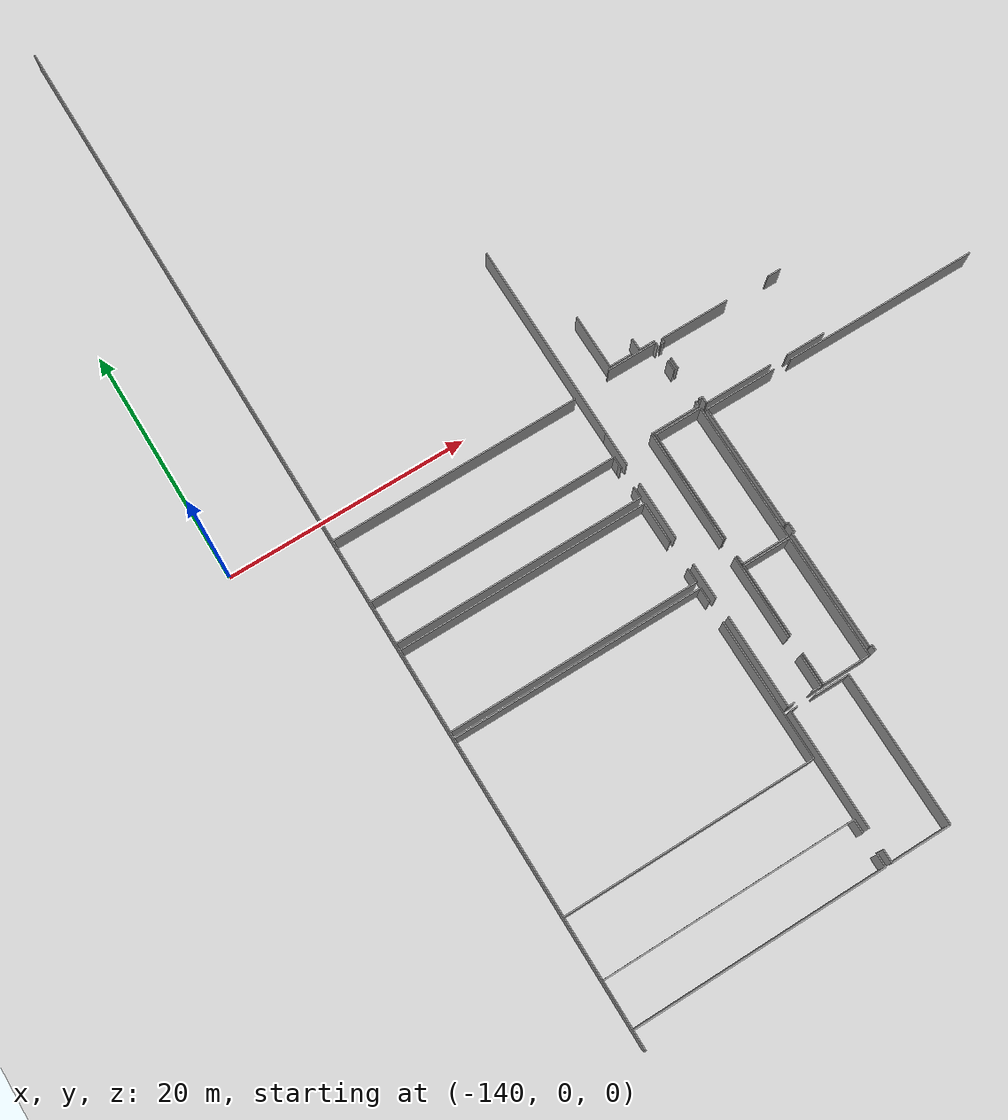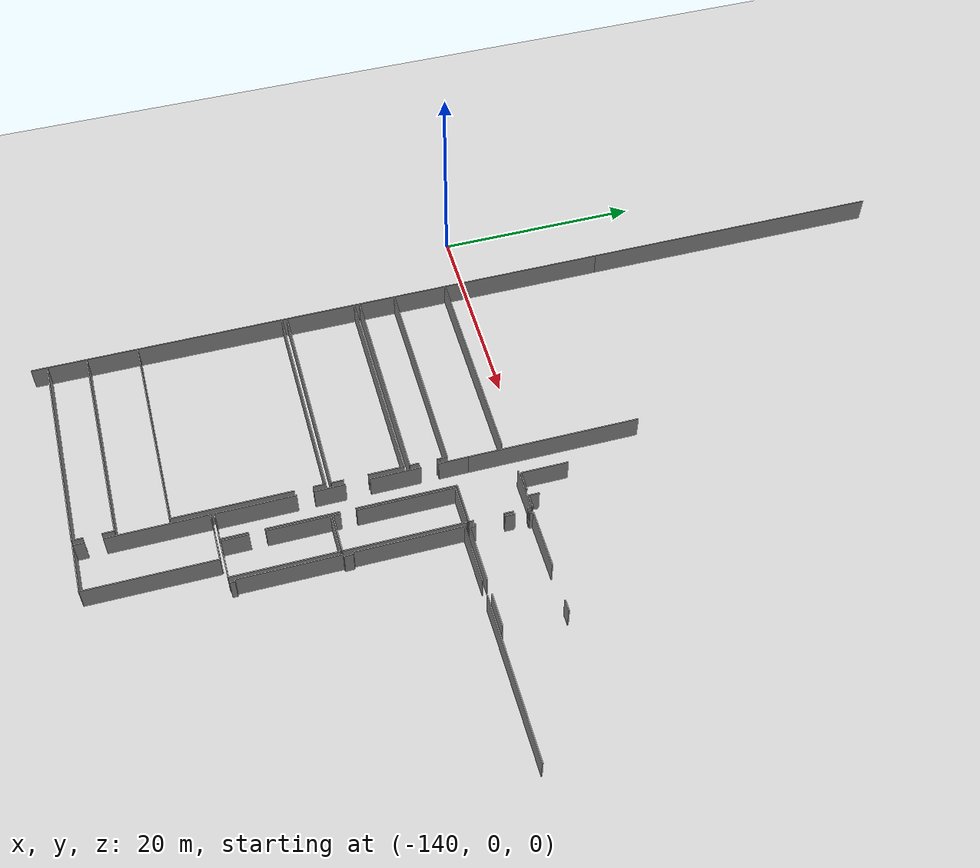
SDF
<sdf version="1.6">
 <world name="default">
  <model name="ground_plane">
   <static>1</static>
   <link name="link">
    <collision name="collision">
     <geometry><plane><normal>0 0 1</normal><size>100 100</size></plane></geometry>
     <surface><friction><ode><mu>100</mu><mu2>50</mu2></ode></friction></surface>
    </collision>
    <visual name="visual">
     <cast_shadows>0</cast_shadows>
     <geometry><plane><normal>0 0 1</normal><size>100 100</size></plane></geometry>
     <material>
      <script><uri>file://media/materials/scripts/gazebo.material</uri><name>Gazebo/Grey</name></script>
     </material>
    </visual>
   </link>
  </model>
  <model name="50015847">
   <static>1</static>
   <link name="Wall_31">
    <collision name="Wall_31_Collision">
     <geometry><box><size>16.1043880612 0.1 2.5</size></box></geometry>
     <pose>8.05219403061 0 1.25 0 0 0</pose>
    </collision>
    <visual name="Wall_31_Visual">
     <pose>8.05219403061 0 1.25 0 0 0</pose>
     <geometry><box><size>16.1043880612 0.1 2.5</size></box></geometry>
     <material>
      <script><uri>file://media/materials/scripts/gazebo.material</uri><name>Gazebo/Grey</name></script>
      <ambient>1 1 1 1</ambient>
     </material>
    </visual>
    <pose>0.00330502872833 -46.1496415315 0 0 0 1.57079632679</pose>
   </link>
   <link name="Wall_35">
    <collision name="Wall_35_Collision">
     <geometry><box><size>20.7571195687 0.1 2.5</size></box></geometry>
     <pose>10.3785597844 0 1.25 0 0 0</pose>
    </collision>
    <visual name="Wall_35_Visual">
     <pose>10.3785597844 0 1.25 0 0 0</pose>
     <geometry><box><size>20.7571195687 0.1 2.5</size></box></geometry>
     <material>
      <script><uri>file://media/materials/scripts/gazebo.material</uri><name>Gazebo/Grey</name></script>
      <ambient>1 1 1 1</ambient>
     </material>
    </visual>
    <pose>20.7604108405 -46.1735394315 0 0 0 3.14044134234</pose>
   </link>
   <link name="Wall_36">
    <collision name="Wall_36_Collision">
     <geometry><box><size>3.59027813088 0.1 2.5</size></box></geometry>
     <pose>1.79513906544 0 1.25 0 0 0</pose>
    </collision>
    <visual name="Wall_36_Visual">
     <pose>1.79513906544 0 1.25 0 0 0</pose>
     <geometry><box><size>3.59027813088 0.1 2.5</size></box></geometry>
     <material>
      <script><uri>file://media/materials/scripts/gazebo.material</uri><name>Gazebo/Grey</name></script>
      <ambient>1 1 1 1</ambient>
     </material>
    </visual>
    <pose>0.0101693191641 -55.0701683022 0 0 0 1.57079632679</pose>
   </link>
   <link name="Wall_37">
    <collision name="Wall_37_Collision">
     <geometry><box><size>20.7502415213 0.1 2.5</size></box></geometry>
     <pose>10.3751207607 0 1.25 0 0 0</pose>
    </collision>
    <visual name="Wall_37_Visual">
     <pose>10.3751207607 0 1.25 0 0 0</pose>
     <geometry><box><size>20.7502415213 0.1 2.5</size></box></geometry>
     <material>
      <script><uri>file://media/materials/scripts/gazebo.material</uri><name>Gazebo/Grey</name></script>
      <ambient>1 1 1 1</ambient>
     </material>
    </visual>
    <pose>0.0101693191641 -51.4798901714 0 0 0 0.0</pose>
   </link>
   <link name="Wall_38">
    <collision name="Wall_38_Collision">
     <geometry><box><size>0.692784868053 0.1 2.5</size></box></geometry>
     <pose>0.346392434027 0 1.25 0 0 0</pose>
    </collision>
    <visual name="Wall_38_Visual">
     <pose>0.346392434027 0 1.25 0 0 0</pose>
     <geometry><box><size>0.692784868053 0.1 2.5</size></box></geometry>
     <material>
      <script><uri>file://media/materials/scripts/gazebo.material</uri><name>Gazebo/Grey</name></script>
      <ambient>1 1 1 1</ambient>
     </material>
    </visual>
    <pose>20.7604108405 -51.4798901714 0 0 0 -1.57079632679</pose>
   </link>
   <link name="Wall_39">
    <collision name="Wall_39_Collision">
     <geometry><box><size>0.328469009 0.1 2.5</size></box></geometry>
     <pose>0.1642345045 0 1.25 0 0 0</pose>
    </collision>
    <visual name="Wall_39_Visual">
     <pose>0.1642345045 0 1.25 0 0 0</pose>
     <geometry><box><size>0.328469009 0.1 2.5</size></box></geometry>
     <material>
      <script><uri>file://media/materials/scripts/gazebo.material</uri><name>Gazebo/Grey</name></script>
      <ambient>1 1 1 1</ambient>
     </material>
    </visual>
    <pose>20.7604108405 -52.1726750394 0 0 0 -1.57079632679</pose>
   </link>
   <link name="Wall_40">
    <collision name="Wall_40_Collision">
     <geometry><box><size>0.925662276911 0.1 2.5</size></box></geometry>
     <pose>0.462831138455 0 1.25 0 0 0</pose>
    </collision>
    <visual name="Wall_40_Visual">
     <pose>0.462831138455 0 1.25 0 0 0</pose>
     <geometry><box><size>0.925662276911 0.1 2.5</size></box></geometry>
     <material>
      <script><uri>file://media/materials/scripts/gazebo.material</uri><name>Gazebo/Grey</name></script>
      <ambient>1 1 1 1</ambient>
     </material>
    </visual>
    <pose>20.7604108405 -54.1623023339 0 0 0 -1.57079632679</pose>
   </link>
   <link name="Wall_41">
    <collision name="Wall_41_Collision">
     <geometry><box><size>20.7502491528 0.1 2.5</size></box></geometry>
     <pose>10.3751245764 0 1.25 0 0 0</pose>
    </collision>
    <visual name="Wall_41_Visual">
     <pose>10.3751245764 0 1.25 0 0 0</pose>
     <geometry><box><size>20.7502491528 0.1 2.5</size></box></geometry>
     <material>
      <script><uri>file://media/materials/scripts/gazebo.material</uri><name>Gazebo/Grey</name></script>
      <ambient>1 1 1 1</ambient>
     </material>
    </visual>
    <pose>20.7604108405 -55.0879646108 0 0 0 3.14073501036</pose>
   </link>
   <link name="Wall_42">
    <collision name="Wall_42_Collision">
     <geometry><box><size>6.89327299537 0.1 2.5</size></box></geometry>
     <pose>3.44663649769 0 1.25 0 0 0</pose>
    </collision>
    <visual name="Wall_42_Visual">
     <pose>3.44663649769 0 1.25 0 0 0</pose>
     <geometry><box><size>6.89327299537 0.1 2.5</size></box></geometry>
     <material>
      <script><uri>file://media/materials/scripts/gazebo.material</uri><name>Gazebo/Grey</name></script>
      <ambient>1 1 1 1</ambient>
     </material>
    </visual>
    <pose>0.012457415976 -62.5209742208 0 0 0 1.57079632679</pose>
   </link>
   <link name="Wall_43">
    <collision name="Wall_43_Collision">
     <geometry><box><size>20.7428687649 0.1 2.5</size></box></geometry>
     <pose>10.3714343825 0 1.25 0 0 0</pose>
    </collision>
    <visual name="Wall_43_Visual">
     <pose>10.3714343825 0 1.25 0 0 0</pose>
     <geometry><box><size>20.7428687649 0.1 2.5</size></box></geometry>
     <material>
      <script><uri>file://media/materials/scripts/gazebo.material</uri><name>Gazebo/Grey</name></script>
      <ambient>1 1 1 1</ambient>
     </material>
    </visual>
    <pose>0.012457415976 -55.6277012254 0 0 0 0.0</pose>
   </link>
   <link name="Wall_44">
    <collision name="Wall_44_Collision">
     <geometry><box><size>3.4257893934 0.1 2.5</size></box></geometry>
     <pose>1.7128946967 0 1.25 0 0 0</pose>
    </collision>
    <visual name="Wall_44_Visual">
     <pose>1.7128946967 0 1.25 0 0 0</pose>
     <geometry><box><size>3.4257893934 0.1 2.5</size></box></geometry>
     <material>
      <script><uri>file://media/materials/scripts/gazebo.material</uri><name>Gazebo/Grey</name></script>
      <ambient>1 1 1 1</ambient>
     </material>
    </visual>
    <pose>20.7553261809 -55.6277012254 0 0 0 -1.57079632679</pose>
   </link>
   <link name="Wall_45">
    <collision name="Wall_45_Collision">
     <geometry><box><size>1.17023440281 0.1 2.5</size></box></geometry>
     <pose>0.585117201403 0 1.25 0 0 0</pose>
    </collision>
    <visual name="Wall_45_Visual">
     <pose>0.585117201403 0 1.25 0 0 0</pose>
     <geometry><box><size>1.17023440281 0.1 2.5</size></box></geometry>
     <material>
      <script><uri>file://media/materials/scripts/gazebo.material</uri><name>Gazebo/Grey</name></script>
      <ambient>1 1 1 1</ambient>
     </material>
    </visual>
    <pose>20.7553261809 -61.3606549042 0 0 0 -1.57079632679</pose>
   </link>
   <link name="Wall_46">
    <collision name="Wall_46_Collision">
     <geometry><box><size>20.7428711346 0.1 2.5</size></box></geometry>
     <pose>10.3714355673 0 1.25 0 0 0</pose>
    </collision>
    <visual name="Wall_46_Visual">
     <pose>10.3714355673 0 1.25 0 0 0</pose>
     <geometry><box><size>20.7428711346 0.1 2.5</size></box></geometry>
     <material>
      <script><uri>file://media/materials/scripts/gazebo.material</uri><name>Gazebo/Grey</name></script>
      <ambient>1 1 1 1</ambient>
     </material>
    </visual>
    <pose>20.7553261809 -62.530889307 0 0 0 3.14111465387</pose>
   </link>
   <link name="Wall_47">
    <collision name="Wall_47_Collision">
     <geometry><box><size>14.4322977577 0.1 2.5</size></box></geometry>
     <pose>7.21614887883 0 1.25 0 0 0</pose>
    </collision>
    <visual name="Wall_47_Visual">
     <pose>7.21614887883 0 1.25 0 0 0</pose>
     <geometry><box><size>14.4322977577 0.1 2.5</size></box></geometry>
     <material>
      <script><uri>file://media/materials/scripts/gazebo.material</uri><name>Gazebo/Grey</name></script>
      <ambient>1 1 1 1</ambient>
     </material>
    </visual>
    <pose>0.00406772766564 -77.4805511771 0 0 0 1.57079632679</pose>
   </link>
   <link name="Wall_48">
    <collision name="Wall_48_Collision">
     <geometry><box><size>20.7311740479 0.1 2.5</size></box></geometry>
     <pose>10.3655870239 0 1.25 0 0 0</pose>
    </collision>
    <visual name="Wall_48_Visual">
     <pose>10.3655870239 0 1.25 0 0 0</pose>
     <geometry><box><size>20.7311740479 0.1 2.5</size></box></geometry>
     <material>
      <script><uri>file://media/materials/scripts/gazebo.material</uri><name>Gazebo/Grey</name></script>
      <ambient>1 1 1 1</ambient>
     </material>
    </visual>
    <pose>0.00406772766564 -63.0482534194 0 0 0 0.0</pose>
   </link>
   <link name="Wall_49">
    <collision name="Wall_49_Collision">
     <geometry><box><size>1.20811511669 0.1 2.5</size></box></geometry>
     <pose>0.604057558346 0 1.25 0 0 0</pose>
    </collision>
    <visual name="Wall_49_Visual">
     <pose>0.604057558346 0 1.25 0 0 0</pose>
     <geometry><box><size>1.20811511669 0.1 2.5</size></box></geometry>
     <material>
      <script><uri>file://media/materials/scripts/gazebo.material</uri><name>Gazebo/Grey</name></script>
      <ambient>1 1 1 1</ambient>
     </material>
    </visual>
    <pose>20.7352417756 -63.0482534194 0 0 0 -1.57079632679</pose>
   </link>
   <link name="Wall_50">
    <collision name="Wall_50_Collision">
     <geometry><box><size>11.495906849 0.1 2.5</size></box></geometry>
     <pose>5.74795342452 0 1.25 0 0 0</pose>
    </collision>
    <visual name="Wall_50_Visual">
     <pose>5.74795342452 0 1.25 0 0 0</pose>
     <geometry><box><size>11.495906849 0.1 2.5</size></box></geometry>
     <material>
      <script><uri>file://media/materials/scripts/gazebo.material</uri><name>Gazebo/Grey</name></script>
      <ambient>1 1 1 1</ambient>
     </material>
    </visual>
    <pose>20.7352417756 -65.9950678802 0 0 0 -1.57079632679</pose>
   </link>
   <link name="Wall_51">
    <collision name="Wall_51_Collision">
     <geometry><box><size>20.7311766684 0.1 2.5</size></box></geometry>
     <pose>10.3655883342 0 1.25 0 0 0</pose>
    </collision>
    <visual name="Wall_51_Visual">
     <pose>10.3655883342 0 1.25 0 0 0</pose>
     <geometry><box><size>20.7311766684 0.1 2.5</size></box></geometry>
     <material>
      <script><uri>file://media/materials/scripts/gazebo.material</uri><name>Gazebo/Grey</name></script>
      <ambient>1 1 1 1</ambient>
     </material>
    </visual>
    <pose>20.7352417756 -77.4909747292 0 0 0 3.1410898576</pose>
   </link>
   <link name="Wall_52">
    <collision name="Wall_52_Collision">
     <geometry><box><size>2.62673514008 0.1 2.5</size></box></geometry>
     <pose>1.31336757004 0 1.25 0 0 0</pose>
    </collision>
    <visual name="Wall_52_Visual">
     <pose>1.31336757004 0 1.25 0 0 0</pose>
     <geometry><box><size>2.62673514008 0.1 2.5</size></box></geometry>
     <material>
      <script><uri>file://media/materials/scripts/gazebo.material</uri><name>Gazebo/Grey</name></script>
      <ambient>1 1 1 1</ambient>
     </material>
    </visual>
    <pose>24.3034016373 -73.4753648243 0 0 0 1.57079632679</pose>
   </link>
   <link name="Wall_53">
    <collision name="Wall_53_Collision">
     <geometry><box><size>6.01159302385 0.1 2.5</size></box></geometry>
     <pose>3.00579651192 0 1.25 0 0 0</pose>
    </collision>
    <visual name="Wall_53_Visual">
     <pose>3.00579651192 0 1.25 0 0 0</pose>
     <geometry><box><size>6.01159302385 0.1 2.5</size></box></geometry>
     <material>
      <script><uri>file://media/materials/scripts/gazebo.material</uri><name>Gazebo/Grey</name></script>
      <ambient>1 1 1 1</ambient>
     </material>
    </visual>
    <pose>24.3034016373 -69.3458585448 0 0 0 1.57079632679</pose>
   </link>
   <link name="Wall_54">
    <collision name="Wall_54_Collision">
     <geometry><box><size>3.95205166014 0.1 2.5</size></box></geometry>
     <pose>1.97602583007 0 1.25 0 0 0</pose>
    </collision>
    <visual name="Wall_54_Visual">
     <pose>1.97602583007 0 1.25 0 0 0</pose>
     <geometry><box><size>3.95205166014 0.1 2.5</size></box></geometry>
     <material>
      <script><uri>file://media/materials/scripts/gazebo.material</uri><name>Gazebo/Grey</name></script>
      <ambient>1 1 1 1</ambient>
     </material>
    </visual>
    <pose>24.3034016373 -63.3342655209 0 0 0 0.0</pose>
   </link>
   <link name="Wall_55">
    <collision name="Wall_55_Collision">
     <geometry><box><size>10.1238114608 0.1 2.5</size></box></geometry>
     <pose>5.06190573041 0 1.25 0 0 0</pose>
    </collision>
    <visual name="Wall_55_Visual">
     <pose>5.06190573041 0 1.25 0 0 0</pose>
     <geometry><box><size>10.1238114608 0.1 2.5</size></box></geometry>
     <material>
      <script><uri>file://media/materials/scripts/gazebo.material</uri><name>Gazebo/Grey</name></script>
      <ambient>1 1 1 1</ambient>
     </material>
    </visual>
    <pose>28.2554532974 -63.3342655209 0 0 0 -1.57079632679</pose>
   </link>
   <link name="Wall_56">
    <collision name="Wall_56_Collision">
     <geometry><box><size>3.9520894719 0.1 2.5</size></box></geometry>
     <pose>1.97604473595 0 1.25 0 0 0</pose>
    </collision>
    <visual name="Wall_56_Visual">
     <pose>1.97604473595 0 1.25 0 0 0</pose>
     <geometry><box><size>3.9520894719 0.1 2.5</size></box></geometry>
     <material>
      <script><uri>file://media/materials/scripts/gazebo.material</uri><name>Gazebo/Grey</name></script>
      <ambient>1 1 1 1</ambient>
     </material>
    </visual>
    <pose>28.2554532974 -73.4580769817 0 0 0 -3.13721828458</pose>
   </link>
   <link name="Wall_57">
    <collision name="Wall_57_Collision">
     <geometry><box><size>3.94747546652 0.1 2.5</size></box></geometry>
     <pose>1.97373773326 0 1.25 0 0 0</pose>
    </collision>
    <visual name="Wall_57_Visual">
     <pose>1.97373773326 0 1.25 0 0 0</pose>
     <geometry><box><size>3.94747546652 0.1 2.5</size></box></geometry>
     <material>
      <script><uri>file://media/materials/scripts/gazebo.material</uri><name>Gazebo/Grey</name></script>
      <ambient>1 1 1 1</ambient>
     </material>
    </visual>
    <pose>24.3079778309 -51.6453958407 0 0 0 0.0</pose>
   </link>
   <link name="Wall_58">
    <collision name="Wall_58_Collision">
     <geometry><box><size>11.5154827884 0.1 2.5</size></box></geometry>
     <pose>5.75774139421 0 1.25 0 0 0</pose>
    </collision>
    <visual name="Wall_58_Visual">
     <pose>5.75774139421 0 1.25 0 0 0</pose>
     <geometry><box><size>11.5154827884 0.1 2.5</size></box></geometry>
     <material>
      <script><uri>file://media/materials/scripts/gazebo.material</uri><name>Gazebo/Grey</name></script>
      <ambient>1 1 1 1</ambient>
     </material>
    </visual>
    <pose>28.2554532974 -51.6453958407 0 0 0 -1.57079632679</pose>
   </link>
   <link name="Wall_59">
    <collision name="Wall_59_Collision">
     <geometry><box><size>3.94188234098 0.1 2.5</size></box></geometry>
     <pose>1.97094117049 0 1.25 0 0 0</pose>
    </collision>
    <visual name="Wall_59_Visual">
     <pose>1.97094117049 0 1.25 0 0 0</pose>
     <geometry><box><size>3.94188234098 0.1 2.5</size></box></geometry>
     <material>
      <script><uri>file://media/materials/scripts/gazebo.material</uri><name>Gazebo/Grey</name></script>
      <ambient>1 1 1 1</ambient>
     </material>
    </visual>
    <pose>28.2554532974 -63.1608786292 0 0 0 3.14159265359</pose>
   </link>
   <link name="Wall_60">
    <collision name="Wall_60_Collision">
     <geometry><box><size>0.714648904256 0.1 2.5</size></box></geometry>
     <pose>0.357324452128 0 1.25 0 0 0</pose>
    </collision>
    <visual name="Wall_60_Visual">
     <pose>0.357324452128 0 1.25 0 0 0</pose>
     <geometry><box><size>0.714648904256 0.1 2.5</size></box></geometry>
     <material>
      <script><uri>file://media/materials/scripts/gazebo.material</uri><name>Gazebo/Grey</name></script>
      <ambient>1 1 1 1</ambient>
     </material>
    </visual>
    <pose>24.3135709564 -63.1608786292 0 0 0 1.57079632679</pose>
   </link>
   <link name="Wall_61">
    <collision name="Wall_61_Collision">
     <geometry><box><size>9.30899644306 0.1 2.5</size></box></geometry>
     <pose>4.65449822153 0 1.25 0 0 0</pose>
    </collision>
    <visual name="Wall_61_Visual">
     <pose>4.65449822153 0 1.25 0 0 0</pose>
     <geometry><box><size>9.30899644306 0.1 2.5</size></box></geometry>
     <material>
      <script><uri>file://media/materials/scripts/gazebo.material</uri><name>Gazebo/Grey</name></script>
      <ambient>1 1 1 1</ambient>
     </material>
    </visual>
    <pose>24.3135709564 -60.9543906035 0 0 0 1.57139715696</pose>
   </link>
   <link name="Wall_62">
    <collision name="Wall_62_Collision">
     <geometry><box><size>4.62576905476 0.1 2.5</size></box></geometry>
     <pose>2.31288452738 0 1.25 0 0 0</pose>
    </collision>
    <visual name="Wall_62_Visual">
     <pose>2.31288452738 0 1.25 0 0 0</pose>
     <geometry><box><size>4.62576905476 0.1 2.5</size></box></geometry>
     <material>
      <script><uri>file://media/materials/scripts/gazebo.material</uri><name>Gazebo/Grey</name></script>
      <ambient>1 1 1 1</ambient>
     </material>
    </visual>
    <pose>24.3176386841 -45.3851629633 0 0 0 1.57079632679</pose>
   </link>
   <link name="Wall_66">
    <collision name="Wall_66_Collision">
     <geometry><box><size>1.32277419027 0.1 2.5</size></box></geometry>
     <pose>0.661387095134 0 1.25 0 0 0</pose>
    </collision>
    <visual name="Wall_66_Visual">
     <pose>0.661387095134 0 1.25 0 0 0</pose>
     <geometry><box><size>1.32277419027 0.1 2.5</size></box></geometry>
     <material>
      <script><uri>file://media/materials/scripts/gazebo.material</uri><name>Gazebo/Grey</name></script>
      <ambient>1 1 1 1</ambient>
     </material>
    </visual>
    <pose>28.2457924442 -45.4171963187 0 0 0 3.14159265359</pose>
   </link>
   <link name="Wall_67">
    <collision name="Wall_67_Collision">
     <geometry><box><size>1.03066049728 0.1 2.5</size></box></geometry>
     <pose>0.51533024864 0 1.25 0 0 0</pose>
    </collision>
    <visual name="Wall_67_Visual">
     <pose>0.51533024864 0 1.25 0 0 0</pose>
     <geometry><box><size>1.03066049728 0.1 2.5</size></box></geometry>
     <material>
      <script><uri>file://media/materials/scripts/gazebo.material</uri><name>Gazebo/Grey</name></script>
      <ambient>1 1 1 1</ambient>
     </material>
    </visual>
    <pose>26.9230182539 -45.4171963187 0 0 0 1.57079632679</pose>
   </link>
   <link name="Wall_70">
    <collision name="Wall_70_Collision">
     <geometry><box><size>1.90726909355 0.1 2.5</size></box></geometry>
     <pose>0.953634546773 0 1.25 0 0 0</pose>
    </collision>
    <visual name="Wall_70_Visual">
     <pose>0.953634546773 0 1.25 0 0 0</pose>
     <geometry><box><size>1.90726909355 0.1 2.5</size></box></geometry>
     <material>
      <script><uri>file://media/materials/scripts/gazebo.material</uri><name>Gazebo/Grey</name></script>
      <ambient>1 1 1 1</ambient>
     </material>
    </visual>
    <pose>26.2248944933 -45.3922814868 0 0 0 3.13786033288</pose>
   </link>
   <link name="Wall_98">
    <collision name="Wall_98_Collision">
     <geometry><box><size>16.7829358824 0.1 2.5</size></box></geometry>
     <pose>8.39146794122 0 1.25 0 0 0</pose>
    </collision>
    <visual name="Wall_98_Visual">
     <pose>8.39146794122 0 1.25 0 0 0</pose>
     <geometry><box><size>16.7829358824 0.1 2.5</size></box></geometry>
     <material>
      <script><uri>file://media/materials/scripts/gazebo.material</uri><name>Gazebo/Grey</name></script>
      <ambient>1 1 1 1</ambient>
     </material>
    </visual>
    <pose>21.2645548381 -49.5917018356 0 0 0 1.57079632679</pose>
   </link>
   <link name="Wall_109">
    <collision name="Wall_109_Collision">
     <geometry><box><size>4.17475974983 0.1 2.5</size></box></geometry>
     <pose>2.08737987492 0 1.25 0 0 0</pose>
    </collision>
    <visual name="Wall_109_Visual">
     <pose>2.08737987492 0 1.25 0 0 0</pose>
     <geometry><box><size>4.17475974983 0.1 2.5</size></box></geometry>
     <material>
      <script><uri>file://media/materials/scripts/gazebo.material</uri><name>Gazebo/Grey</name></script>
      <ambient>1 1 1 1</ambient>
     </material>
    </visual>
    <pose>24.0710326944 -45.5666853104 0 0 0 0.0</pose>
   </link>
   <link name="Wall_110">
    <collision name="Wall_110_Collision">
     <geometry><box><size>0.353638073931 0.1 2.5</size></box></geometry>
     <pose>0.176819036965 0 1.25 0 0 0</pose>
    </collision>
    <visual name="Wall_110_Visual">
     <pose>0.176819036965 0 1.25 0 0 0</pose>
     <geometry><box><size>0.353638073931 0.1 2.5</size></box></geometry>
     <material>
      <script><uri>file://media/materials/scripts/gazebo.material</uri><name>Gazebo/Grey</name></script>
      <ambient>1 1 1 1</ambient>
     </material>
    </visual>
    <pose>28.2457924442 -45.5666853104 0 0 0 -1.57079632679</pose>
   </link>
   <link name="Wall_111">
    <collision name="Wall_111_Collision">
     <geometry><box><size>0.898205115168 0.1 2.5</size></box></geometry>
     <pose>0.449102557584 0 1.25 0 0 0</pose>
    </collision>
    <visual name="Wall_111_Visual">
     <pose>0.449102557584 0 1.25 0 0 0</pose>
     <geometry><box><size>0.898205115168 0.1 2.5</size></box></geometry>
     <material>
      <script><uri>file://media/materials/scripts/gazebo.material</uri><name>Gazebo/Grey</name></script>
      <ambient>1 1 1 1</ambient>
     </material>
    </visual>
    <pose>28.2457924442 -47.2489449331 0 0 0 -1.57079632679</pose>
   </link>
   <link name="Wall_112">
    <collision name="Wall_112_Collision">
     <geometry><box><size>0.411857426145 0.1 2.5</size></box></geometry>
     <pose>0.205928713073 0 1.25 0 0 0</pose>
    </collision>
    <visual name="Wall_112_Visual">
     <pose>0.205928713073 0 1.25 0 0 0</pose>
     <geometry><box><size>0.411857426145 0.1 2.5</size></box></geometry>
     <material>
      <script><uri>file://media/materials/scripts/gazebo.material</uri><name>Gazebo/Grey</name></script>
      <ambient>1 1 1 1</ambient>
     </material>
    </visual>
    <pose>28.2457924442 -51.022016576 0 0 0 -1.57079632679</pose>
   </link>
   <link name="Wall_113">
    <collision name="Wall_113_Collision">
     <geometry><box><size>4.13687903595 0.1 2.5</size></box></geometry>
     <pose>2.06843951797 0 1.25 0 0 0</pose>
    </collision>
    <visual name="Wall_113_Visual">
     <pose>2.06843951797 0 1.25 0 0 0</pose>
     <geometry><box><size>4.13687903595 0.1 2.5</size></box></geometry>
     <material>
      <script><uri>file://media/materials/scripts/gazebo.material</uri><name>Gazebo/Grey</name></script>
      <ambient>1 1 1 1</ambient>
     </material>
    </visual>
    <pose>28.2457924442 -51.4338740021 0 0 0 3.14159265359</pose>
   </link>
   <link name="Wall_114">
    <collision name="Wall_114_Collision">
     <geometry><box><size>9.55254995678 0.1 2.5</size></box></geometry>
     <pose>4.77627497839 0 1.25 0 0 0</pose>
    </collision>
    <visual name="Wall_114_Visual">
     <pose>4.77627497839 0 1.25 0 0 0</pose>
     <geometry><box><size>9.55254995678 0.1 2.5</size></box></geometry>
     <material>
      <script><uri>file://media/materials/scripts/gazebo.material</uri><name>Gazebo/Grey</name></script>
      <ambient>1 1 1 1</ambient>
     </material>
    </visual>
    <pose>24.1089134082 -51.4338740021 0 0 0 -1.57079632679</pose>
   </link>
   <link name="Wall_115">
    <collision name="Wall_115_Collision">
     <geometry><box><size>6.92505211776 0.1 2.5</size></box></geometry>
     <pose>3.46252605888 0 1.25 0 0 0</pose>
    </collision>
    <visual name="Wall_115_Visual">
     <pose>3.46252605888 0 1.25 0 0 0</pose>
     <geometry><box><size>6.92505211776 0.1 2.5</size></box></geometry>
     <material>
      <script><uri>file://media/materials/scripts/gazebo.material</uri><name>Gazebo/Grey</name></script>
      <ambient>1 1 1 1</ambient>
     </material>
    </visual>
    <pose>24.1089134082 -62.4525855494 0 0 0 -1.57079632679</pose>
   </link>
   <link name="Wall_116">
    <collision name="Wall_116_Collision">
     <geometry><box><size>2.6229216454 0.1 2.5</size></box></geometry>
     <pose>1.3114608227 0 1.25 0 0 0</pose>
    </collision>
    <visual name="Wall_116_Visual">
     <pose>1.3114608227 0 1.25 0 0 0</pose>
     <geometry><box><size>2.6229216454 0.1 2.5</size></box></geometry>
     <material>
      <script><uri>file://media/materials/scripts/gazebo.material</uri><name>Gazebo/Grey</name></script>
      <ambient>1 1 1 1</ambient>
     </material>
    </visual>
    <pose>24.1089134082 -70.8745614481 0 0 0 -1.57079632679</pose>
   </link>
   <link name="Wall_117">
    <collision name="Wall_117_Collision">
     <geometry><box><size>0.773122489449 0.1 2.5</size></box></geometry>
     <pose>0.386561244725 0 1.25 0 0 0</pose>
    </collision>
    <visual name="Wall_117_Visual">
     <pose>0.386561244725 0 1.25 0 0 0</pose>
     <geometry><box><size>0.773122489449 0.1 2.5</size></box></geometry>
     <material>
      <script><uri>file://media/materials/scripts/gazebo.material</uri><name>Gazebo/Grey</name></script>
      <ambient>1 1 1 1</ambient>
     </material>
    </visual>
    <pose>24.1089134082 -73.4974830935 0 0 0 3.14159265359</pose>
   </link>
   <link name="Wall_118">
    <collision name="Wall_118_Collision">
     <geometry><box><size>0.558041389129 0.1 2.5</size></box></geometry>
     <pose>0.279020694565 0 1.25 0 0 0</pose>
    </collision>
    <visual name="Wall_118_Visual">
     <pose>0.279020694565 0 1.25 0 0 0</pose>
     <geometry><box><size>0.558041389129 0.1 2.5</size></box></geometry>
     <material>
      <script><uri>file://media/materials/scripts/gazebo.material</uri><name>Gazebo/Grey</name></script>
      <ambient>1 1 1 1</ambient>
     </material>
    </visual>
    <pose>21.8286978187 -73.4974830935 0 0 0 3.14159265359</pose>
   </link>
   <link name="Wall_119">
    <collision name="Wall_119_Collision">
     <geometry><box><size>7.63588752733 0.1 2.5</size></box></geometry>
     <pose>3.81794376367 0 1.25 0 0 0</pose>
    </collision>
    <visual name="Wall_119_Visual">
     <pose>3.81794376367 0 1.25 0 0 0</pose>
     <geometry><box><size>7.63588752733 0.1 2.5</size></box></geometry>
     <material>
      <script><uri>file://media/materials/scripts/gazebo.material</uri><name>Gazebo/Grey</name></script>
      <ambient>1 1 1 1</ambient>
     </material>
    </visual>
    <pose>21.2706564296 -73.4974830935 0 0 0 1.57079632679</pose>
   </link>
   <link name="Wall_120">
    <collision name="Wall_120_Collision">
     <geometry><box><size>2.96613616718 0.1 2.5</size></box></geometry>
     <pose>1.48306808359 0 1.25 0 0 0</pose>
    </collision>
    <visual name="Wall_120_Visual">
     <pose>1.48306808359 0 1.25 0 0 0</pose>
     <geometry><box><size>2.96613616718 0.1 2.5</size></box></geometry>
     <material>
      <script><uri>file://media/materials/scripts/gazebo.material</uri><name>Gazebo/Grey</name></script>
      <ambient>1 1 1 1</ambient>
     </material>
    </visual>
    <pose>21.2706564296 -64.2688259521 0 0 0 1.57079632679</pose>
   </link>
   <link name="Wall_121">
    <collision name="Wall_121_Collision">
     <geometry><box><size>4.86551075406 0.1 2.5</size></box></geometry>
     <pose>2.43275537703 0 1.25 0 0 0</pose>
    </collision>
    <visual name="Wall_121_Visual">
     <pose>2.43275537703 0 1.25 0 0 0</pose>
     <geometry><box><size>4.86551075406 0.1 2.5</size></box></geometry>
     <material>
      <script><uri>file://media/materials/scripts/gazebo.material</uri><name>Gazebo/Grey</name></script>
      <ambient>1 1 1 1</ambient>
     </material>
    </visual>
    <pose>21.2706564296 -58.9973051304 0 0 0 1.57079632679</pose>
   </link>
   <link name="Wall_122">
    <collision name="Wall_122_Collision">
     <geometry><box><size>2.86470370648 0.1 2.5</size></box></geometry>
     <pose>1.43235185324 0 1.25 0 0 0</pose>
    </collision>
    <visual name="Wall_122_Visual">
     <pose>1.43235185324 0 1.25 0 0 0</pose>
     <geometry><box><size>2.86470370648 0.1 2.5</size></box></geometry>
     <material>
      <script><uri>file://media/materials/scripts/gazebo.material</uri><name>Gazebo/Grey</name></script>
      <ambient>1 1 1 1</ambient>
     </material>
    </visual>
    <pose>21.2706564296 -52.4563990441 0 0 0 1.57292624903</pose>
   </link>
   <link name="Wall_140">
    <collision name="Wall_140_Collision">
     <geometry><box><size>0.473890273046 0.1 2.5</size></box></geometry>
     <pose>0.236945136523 0 1.25 0 0 0</pose>
    </collision>
    <visual name="Wall_140_Visual">
     <pose>0.236945136523 0 1.25 0 0 0</pose>
     <geometry><box><size>0.473890273046 0.1 2.5</size></box></geometry>
     <material>
      <script><uri>file://media/materials/scripts/gazebo.material</uri><name>Gazebo/Grey</name></script>
      <ambient>1 1 1 1</ambient>
     </material>
    </visual>
    <pose>28.8429857121 -73.4250266945 0 0 0 1.57079632679</pose>
   </link>
   <link name="Wall_141">
    <collision name="Wall_141_Collision">
     <geometry><box><size>0.216098032237 0.1 2.5</size></box></geometry>
     <pose>0.108049016118 0 1.25 0 0 0</pose>
    </collision>
    <visual name="Wall_141_Visual">
     <pose>0.108049016118 0 1.25 0 0 0</pose>
     <geometry><box><size>0.216098032237 0.1 2.5</size></box></geometry>
     <material>
      <script><uri>file://media/materials/scripts/gazebo.material</uri><name>Gazebo/Grey</name></script>
      <ambient>1 1 1 1</ambient>
     </material>
    </visual>
    <pose>28.8429857121 -72.9511364214 0 0 0 3.14159265359</pose>
   </link>
   <link name="Wall_142">
    <collision name="Wall_142_Collision">
     <geometry><box><size>9.80246097524 0.1 2.5</size></box></geometry>
     <pose>4.90123048762 0 1.25 0 0 0</pose>
    </collision>
    <visual name="Wall_142_Visual">
     <pose>4.90123048762 0 1.25 0 0 0</pose>
     <geometry><box><size>9.80246097524 0.1 2.5</size></box></geometry>
     <material>
      <script><uri>file://media/materials/scripts/gazebo.material</uri><name>Gazebo/Grey</name></script>
      <ambient>1 1 1 1</ambient>
     </material>
    </visual>
    <pose>28.6268876799 -72.9511364214 0 0 0 1.57079632679</pose>
   </link>
   <link name="Wall_143">
    <collision name="Wall_143_Collision">
     <geometry><box><size>0.222962322673 0.1 2.5</size></box></geometry>
     <pose>0.111481161336 0 1.25 0 0 0</pose>
    </collision>
    <visual name="Wall_143_Visual">
     <pose>0.111481161336 0 1.25 0 0 0</pose>
     <geometry><box><size>0.222962322673 0.1 2.5</size></box></geometry>
     <material>
      <script><uri>file://media/materials/scripts/gazebo.material</uri><name>Gazebo/Grey</name></script>
      <ambient>1 1 1 1</ambient>
     </material>
    </visual>
    <pose>28.6268876799 -63.1486754462 0 0 0 0.0</pose>
   </link>
   <link name="Wall_144">
    <collision name="Wall_144_Collision">
     <geometry><box><size>0.852697411908 0.1 2.5</size></box></geometry>
     <pose>0.426348705954 0 1.25 0 0 0</pose>
    </collision>
    <visual name="Wall_144_Visual">
     <pose>0.426348705954 0 1.25 0 0 0</pose>
     <geometry><box><size>0.852697411908 0.1 2.5</size></box></geometry>
     <material>
      <script><uri>file://media/materials/scripts/gazebo.material</uri><name>Gazebo/Grey</name></script>
      <ambient>1 1 1 1</ambient>
     </material>
    </visual>
    <pose>28.8498500025 -63.1486754462 0 0 0 1.57079632679</pose>
   </link>
   <link name="Wall_145">
    <collision name="Wall_145_Collision">
     <geometry><box><size>0.223979254589 0.1 2.5</size></box></geometry>
     <pose>0.111989627294 0 1.25 0 0 0</pose>
    </collision>
    <visual name="Wall_145_Visual">
     <pose>0.111989627294 0 1.25 0 0 0</pose>
     <geometry><box><size>0.223979254589 0.1 2.5</size></box></geometry>
     <material>
      <script><uri>file://media/materials/scripts/gazebo.material</uri><name>Gazebo/Grey</name></script>
      <ambient>1 1 1 1</ambient>
     </material>
    </visual>
    <pose>28.8498500025 -62.2959780343 0 0 0 3.14159265359</pose>
   </link>
   <link name="Wall_146">
    <collision name="Wall_146_Collision">
     <geometry><box><size>10.3381298622 0.1 2.5</size></box></geometry>
     <pose>5.1690649311 0 1.25 0 0 0</pose>
    </collision>
    <visual name="Wall_146_Visual">
     <pose>5.1690649311 0 1.25 0 0 0</pose>
     <geometry><box><size>10.3381298622 0.1 2.5</size></box></geometry>
     <material>
      <script><uri>file://media/materials/scripts/gazebo.material</uri><name>Gazebo/Grey</name></script>
      <ambient>1 1 1 1</ambient>
     </material>
    </visual>
    <pose>28.625870748 -62.2959780343 0 0 0 1.57079632679</pose>
   </link>
   <link name="Wall_147">
    <collision name="Wall_147_Collision">
     <geometry><box><size>5.97650887273 0.1 2.5</size></box></geometry>
     <pose>2.98825443637 0 1.25 0 0 0</pose>
    </collision>
    <visual name="Wall_147_Visual">
     <pose>2.98825443637 0 1.25 0 0 0</pose>
     <geometry><box><size>5.97650887273 0.1 2.5</size></box></geometry>
     <material>
      <script><uri>file://media/materials/scripts/gazebo.material</uri><name>Gazebo/Grey</name></script>
      <ambient>1 1 1 1</ambient>
     </material>
    </visual>
    <pose>28.625870748 -51.9578481721 0 0 0 0.0</pose>
   </link>
   <link name="Wall_148">
    <collision name="Wall_148_Collision">
     <geometry><box><size>16.3329435094 0.1 2.5</size></box></geometry>
     <pose>8.16647175472 0 1.25 0 0 0</pose>
    </collision>
    <visual name="Wall_148_Visual">
     <pose>8.16647175472 0 1.25 0 0 0</pose>
     <geometry><box><size>16.3329435094 0.1 2.5</size></box></geometry>
     <material>
      <script><uri>file://media/materials/scripts/gazebo.material</uri><name>Gazebo/Grey</name></script>
      <ambient>1 1 1 1</ambient>
     </material>
    </visual>
    <pose>36.0837951899 -51.9578481721 0 0 0 0.0</pose>
   </link>
   <link name="Wall_1088">
    <collision name="Wall_1088_Collision">
     <geometry><box><size>5.80947780546 0.1 2.5</size></box></geometry>
     <pose>2.90473890273 0 1.25 0 0 0</pose>
    </collision>
    <visual name="Wall_1088_Visual">
     <pose>2.90473890273 0 1.25 0 0 0</pose>
     <geometry><box><size>5.80947780546 0.1 2.5</size></box></geometry>
     <material>
      <script><uri>file://media/materials/scripts/gazebo.material</uri><name>Gazebo/Grey</name></script>
      <ambient>1 1 1 1</ambient>
     </material>
    </visual>
    <pose>28.8262063355 -45.5501601668 0 0 0 0.0</pose>
   </link>
   <link name="Wall_1089">
    <collision name="Wall_1089_Collision">
     <geometry><box><size>1.1338790868 0.1 2.5</size></box></geometry>
     <pose>0.566939543398 0 1.25 0 0 0</pose>
    </collision>
    <visual name="Wall_1089_Visual">
     <pose>0.566939543398 0 1.25 0 0 0</pose>
     <geometry><box><size>1.1338790868 0.1 2.5</size></box></geometry>
     <material>
      <script><uri>file://media/materials/scripts/gazebo.material</uri><name>Gazebo/Grey</name></script>
      <ambient>1 1 1 1</ambient>
     </material>
    </visual>
    <pose>38.3411298114 -45.5501601668 0 0 0 0.0</pose>
   </link>
   <link name="Wall_1280">
    <collision name="Wall_1280_Collision">
     <geometry><box><size>3.33553668582 0.1 2.5</size></box></geometry>
     <pose>1.66776834291 0 1.25 0 0 0</pose>
    </collision>
    <visual name="Wall_1280_Visual">
     <pose>1.66776834291 0 1.25 0 0 0</pose>
     <geometry><box><size>3.33553668582 0.1 2.5</size></box></geometry>
     <material>
      <script><uri>file://media/materials/scripts/gazebo.material</uri><name>Gazebo/Grey</name></script>
      <ambient>1 1 1 1</ambient>
     </material>
    </visual>
    <pose>39.3707733767 -51.5401433874 0 0 0 3.14159265359</pose>
   </link>
   <link name="Wall_1281">
    <collision name="Wall_1281_Collision">
     <geometry><box><size>5.71541160319 0.1 2.5</size></box></geometry>
     <pose>2.8577058016 0 1.25 0 0 0</pose>
    </collision>
    <visual name="Wall_1281_Visual">
     <pose>2.8577058016 0 1.25 0 0 0</pose>
     <geometry><box><size>5.71541160319 0.1 2.5</size></box></geometry>
     <material>
      <script><uri>file://media/materials/scripts/gazebo.material</uri><name>Gazebo/Grey</name></script>
      <ambient>1 1 1 1</ambient>
     </material>
    </visual>
    <pose>34.5632277419 -51.5401433874 0 0 0 3.14159265359</pose>
   </link>
   <link name="Wall_1282">
    <collision name="Wall_1282_Collision">
     <geometry><box><size>0.563888747648 0.1 2.5</size></box></geometry>
     <pose>0.281944373824 0 1.25 0 0 0</pose>
    </collision>
    <visual name="Wall_1282_Visual">
     <pose>0.281944373824 0 1.25 0 0 0</pose>
     <geometry><box><size>0.563888747648 0.1 2.5</size></box></geometry>
     <material>
      <script><uri>file://media/materials/scripts/gazebo.material</uri><name>Gazebo/Grey</name></script>
      <ambient>1 1 1 1</ambient>
     </material>
    </visual>
    <pose>28.8478161387 -51.5401433874 0 0 0 1.57079632679</pose>
   </link>
   <link name="Wall_1283">
    <collision name="Wall_1283_Collision">
     <geometry><box><size>0.301520313215 0.1 2.5</size></box></geometry>
     <pose>0.150760156608 0 1.25 0 0 0</pose>
    </collision>
    <visual name="Wall_1283_Visual">
     <pose>0.150760156608 0 1.25 0 0 0</pose>
     <geometry><box><size>0.301520313215 0.1 2.5</size></box></geometry>
     <material>
      <script><uri>file://media/materials/scripts/gazebo.material</uri><name>Gazebo/Grey</name></script>
      <ambient>1 1 1 1</ambient>
     </material>
    </visual>
    <pose>28.8478161387 -50.9762546398 0 0 0 3.14159265359</pose>
   </link>
   <link name="Wall_1284">
    <collision name="Wall_1284_Collision">
     <geometry><box><size>0.975746173794 0.1 2.5</size></box></geometry>
     <pose>0.487873086897 0 1.25 0 0 0</pose>
    </collision>
    <visual name="Wall_1284_Visual">
     <pose>0.487873086897 0 1.25 0 0 0</pose>
     <geometry><box><size>0.975746173794 0.1 2.5</size></box></geometry>
     <material>
      <script><uri>file://media/materials/scripts/gazebo.material</uri><name>Gazebo/Grey</name></script>
      <ambient>1 1 1 1</ambient>
     </material>
    </visual>
    <pose>28.5462958255 -48.1529974068 0 0 0 1.57079632679</pose>
   </link>
   <link name="Wall_1285">
    <collision name="Wall_1285_Collision">
     <geometry><box><size>0.252961814207 0.1 2.5</size></box></geometry>
     <pose>0.126480907103 0 1.25 0 0 0</pose>
    </collision>
    <visual name="Wall_1285_Visual">
     <pose>0.126480907103 0 1.25 0 0 0</pose>
     <geometry><box><size>0.252961814207 0.1 2.5</size></box></geometry>
     <material>
      <script><uri>file://media/materials/scripts/gazebo.material</uri><name>Gazebo/Grey</name></script>
      <ambient>1 1 1 1</ambient>
     </material>
    </visual>
    <pose>28.5462958255 -45.876341079 0 0 0 0.0</pose>
   </link>
   <link name="Wall_1286">
    <collision name="Wall_1286_Collision">
     <geometry><box><size>0.327292254232 0.1 2.5</size></box></geometry>
     <pose>0.163646127116 0 1.25 0 0 0</pose>
    </collision>
    <visual name="Wall_1286_Visual">
     <pose>0.163646127116 0 1.25 0 0 0</pose>
     <geometry><box><size>0.327292254232 0.1 2.5</size></box></geometry>
     <material>
      <script><uri>file://media/materials/scripts/gazebo.material</uri><name>Gazebo/Grey</name></script>
      <ambient>1 1 1 1</ambient>
     </material>
    </visual>
    <pose>28.7992576397 -45.876341079 0 0 0 1.48836468065</pose>
   </link>
   <link name="Wall_1287">
    <collision name="Wall_1287_Collision">
     <geometry><box><size>0.573549600854 0.1 2.5</size></box></geometry>
     <pose>0.286774800427 0 1.25 0 0 0</pose>
    </collision>
    <visual name="Wall_1287_Visual">
     <pose>0.286774800427 0 1.25 0 0 0</pose>
     <geometry><box><size>0.573549600854 0.1 2.5</size></box></geometry>
     <material>
      <script><uri>file://media/materials/scripts/gazebo.material</uri><name>Gazebo/Grey</name></script>
      <ambient>1 1 1 1</ambient>
     </material>
    </visual>
    <pose>21.2495550923 -73.8284944323 0 0 0 0.0</pose>
   </link>
   <link name="Wall_1288">
    <collision name="Wall_1288_Collision">
     <geometry><box><size>2.87206996492 0.1 2.5</size></box></geometry>
     <pose>1.43603498246 0 1.25 0 0 0</pose>
    </collision>
    <visual name="Wall_1288_Visual">
     <pose>1.43603498246 0 1.25 0 0 0</pose>
     <geometry><box><size>2.87206996492 0.1 2.5</size></box></geometry>
     <material>
      <script><uri>file://media/materials/scripts/gazebo.material</uri><name>Gazebo/Grey</name></script>
      <ambient>1 1 1 1</ambient>
     </material>
    </visual>
    <pose>23.3418925103 -73.8284944323 0 0 0 0.0</pose>
   </link>
   <link name="Wall_1289">
    <collision name="Wall_1289_Collision">
     <geometry><box><size>12.4630091015 0.1 2.5</size></box></geometry>
     <pose>6.23150455077 0 1.25 0 0 0</pose>
    </collision>
    <visual name="Wall_1289_Visual">
     <pose>6.23150455077 0 1.25 0 0 0</pose>
     <geometry><box><size>12.4630091015 0.1 2.5</size></box></geometry>
     <material>
      <script><uri>file://media/materials/scripts/gazebo.material</uri><name>Gazebo/Grey</name></script>
      <ambient>1 1 1 1</ambient>
     </material>
    </visual>
    <pose>26.2139624752 -73.8284944323 0 0 0 -1.57079632679</pose>
   </link>
   <link name="Wall_1290">
    <collision name="Wall_1290_Collision">
     <geometry><box><size>4.95067880205 0.1 2.5</size></box></geometry>
     <pose>2.47533940103 0 1.25 0 0 0</pose>
    </collision>
    <visual name="Wall_1290_Visual">
     <pose>2.47533940103 0 1.25 0 0 0</pose>
     <geometry><box><size>4.95067880205 0.1 2.5</size></box></geometry>
     <material>
      <script><uri>file://media/materials/scripts/gazebo.material</uri><name>Gazebo/Grey</name></script>
      <ambient>1 1 1 1</ambient>
     </material>
    </visual>
    <pose>26.2139624752 -86.2915035338 0 0 0 3.14159265359</pose>
   </link>
   <link name="Wall_1291">
    <collision name="Wall_1291_Collision">
     <geometry><box><size>1.08176132608 0.1 2.5</size></box></geometry>
     <pose>0.54088066304 0 1.25 0 0 0</pose>
    </collision>
    <visual name="Wall_1291_Visual">
     <pose>0.54088066304 0 1.25 0 0 0</pose>
     <geometry><box><size>1.08176132608 0.1 2.5</size></box></geometry>
     <material>
      <script><uri>file://media/materials/scripts/gazebo.material</uri><name>Gazebo/Grey</name></script>
      <ambient>1 1 1 1</ambient>
     </material>
    </visual>
    <pose>21.2632836732 -86.2915035338 0 0 0 1.57079632679</pose>
   </link>
   <link name="Wall_1292">
    <collision name="Wall_1292_Collision">
     <geometry><box><size>9.71577722874 0.1 2.5</size></box></geometry>
     <pose>4.85788861437 0 1.25 0 0 0</pose>
    </collision>
    <visual name="Wall_1292_Visual">
     <pose>4.85788861437 0 1.25 0 0 0</pose>
     <geometry><box><size>9.71577722874 0.1 2.5</size></box></geometry>
     <material>
      <script><uri>file://media/materials/scripts/gazebo.material</uri><name>Gazebo/Grey</name></script>
      <ambient>1 1 1 1</ambient>
     </material>
    </visual>
    <pose>21.2632836732 -83.5442619617 0 0 0 1.57220934658</pose>
   </link>
   <link name="Wall_1293">
    <collision name="Wall_1293_Collision">
     <geometry><box><size>3.81730818122 0.1 2.5</size></box></geometry>
     <pose>1.90865409061 0 1.25 0 0 0</pose>
    </collision>
    <visual name="Wall_1293_Visual">
     <pose>1.90865409061 0 1.25 0 0 0</pose>
     <geometry><box><size>3.81730818122 0.1 2.5</size></box></geometry>
     <material>
      <script><uri>file://media/materials/scripts/gazebo.material</uri><name>Gazebo/Grey</name></script>
      <ambient>1 1 1 1</ambient>
     </material>
    </visual>
    <pose>0.00584735851935 -86.2876900392 0 0 0 1.57079632679</pose>
   </link>
   <link name="Wall_1294">
    <collision name="Wall_1294_Collision">
     <geometry><box><size>20.7166827681 0.1 2.5</size></box></geometry>
     <pose>10.358341384 0 1.25 0 0 0</pose>
    </collision>
    <visual name="Wall_1294_Visual">
     <pose>10.358341384 0 1.25 0 0 0</pose>
     <geometry><box><size>20.7166827681 0.1 2.5</size></box></geometry>
     <material>
      <script><uri>file://media/materials/scripts/gazebo.material</uri><name>Gazebo/Grey</name></script>
      <ambient>1 1 1 1</ambient>
     </material>
    </visual>
    <pose>0.00584735851935 -82.4703818579 0 0 0 0.0</pose>
   </link>
   <link name="Wall_1295">
    <collision name="Wall_1295_Collision">
     <geometry><box><size>1.12498093253 0.1 2.5</size></box></geometry>
     <pose>0.562490466263 0 1.25 0 0 0</pose>
    </collision>
    <visual name="Wall_1295_Visual">
     <pose>0.562490466263 0 1.25 0 0 0</pose>
     <geometry><box><size>1.12498093253 0.1 2.5</size></box></geometry>
     <material>
      <script><uri>file://media/materials/scripts/gazebo.material</uri><name>Gazebo/Grey</name></script>
      <ambient>1 1 1 1</ambient>
     </material>
    </visual>
    <pose>20.7225301266 -82.4703818579 0 0 0 -1.57079632679</pose>
   </link>
   <link name="Wall_1296">
    <collision name="Wall_1296_Collision">
     <geometry><box><size>1.02989779834 0.1 2.5</size></box></geometry>
     <pose>0.514948899171 0 1.25 0 0 0</pose>
    </collision>
    <visual name="Wall_1296_Visual">
     <pose>0.514948899171 0 1.25 0 0 0</pose>
     <geometry><box><size>1.02989779834 0.1 2.5</size></box></geometry>
     <material>
      <script><uri>file://media/materials/scripts/gazebo.material</uri><name>Gazebo/Grey</name></script>
      <ambient>1 1 1 1</ambient>
     </material>
    </visual>
    <pose>20.7225301266 -85.2816901408 0 0 0 -1.57079632679</pose>
   </link>
   <link name="Wall_1297">
    <collision name="Wall_1297_Collision">
     <geometry><box><size>20.7166965519 0.1 2.5</size></box></geometry>
     <pose>10.3583482759 0 1.25 0 0 0</pose>
    </collision>
    <visual name="Wall_1297_Visual">
     <pose>10.3583482759 0 1.25 0 0 0</pose>
     <geometry><box><size>20.7166965519 0.1 2.5</size></box></geometry>
     <material>
      <script><uri>file://media/materials/scripts/gazebo.material</uri><name>Gazebo/Grey</name></script>
      <ambient>1 1 1 1</ambient>
     </material>
    </visual>
    <pose>20.7225301266 -86.3115879392 0 0 0 3.14043909587</pose>
   </link>
   <link name="Wall_1759">
    <collision name="Wall_1759_Collision">
     <geometry><box><size>87.8662226064 0.1 2.5</size></box></geometry>
     <pose>43.9331113032 0 1.25 0 0 0</pose>
    </collision>
    <visual name="Wall_1759_Visual">
     <pose>43.9331113032 0 1.25 0 0 0</pose>
     <geometry><box><size>87.8662226064 0.1 2.5</size></box></geometry>
     <material>
      <script><uri>file://media/materials/scripts/gazebo.material</uri><name>Gazebo/Grey</name></script>
      <ambient>1 1 1 1</ambient>
     </material>
    </visual>
    <pose>0.0 -87.8662226064 0 0 0 1.57079632679</pose>
   </link>
   <pose>-132.35 43.9162226064 0 0 0 0</pose>
  </model>
 </world>
</sdf>
